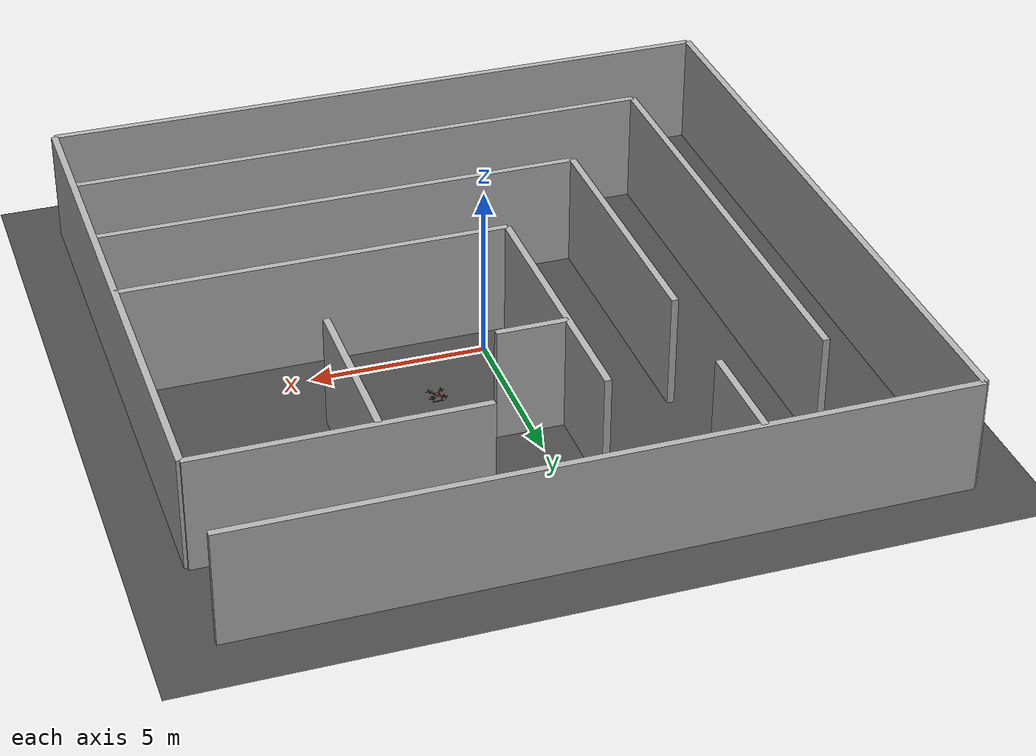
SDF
<?xml version="1.0" ?>
<sdf version="1.9">
  <world name="quad">

    <!-- 1 kHz control loop: HomeFly expects exactly one IMU frame per
         control period (FlightConfig::control_period_us = 1000). -->
    <physics name="homefly_1khz" type="ignored">
      <max_step_size>0.001</max_step_size>
      <real_time_update_rate>1000</real_time_update_rate>
      <real_time_factor>1.0</real_time_factor>
    </physics>

    <plugin filename="gz-sim-physics-system"
            name="gz::sim::systems::Physics"/>
    <!-- Harmonic 8 needs the dedicated Imu system; gz-sim-sensors-system
         only handles rendering style sensors. -->
    <plugin filename="gz-sim-imu-system"
            name="gz::sim::systems::Imu"/>
    <plugin filename="gz-sim-sensors-system"
            name="gz::sim::systems::Sensors"/>
    <plugin filename="gz-sim-user-commands-system"
            name="gz::sim::systems::UserCommands"/>
    <plugin filename="gz-sim-scene-broadcaster-system"
            name="gz::sim::systems::SceneBroadcaster"/>

    <light type="directional" name="sun">
      <cast_shadows>true</cast_shadows>
      <pose>0 0 10 0 0 0</pose>
      <diffuse>0.8 0.8 0.8 1</diffuse>
      <specular>0.2 0.2 0.2 1</specular>
      <direction>-0.5 0.1 -1</direction>
    </light>

    <model name='maze'>
      <static>1</static>
      <link name='Wall_0'>
        <pose degrees="true">-10 -10 0 0 0 90</pose>
        <collision name='Wall_0_Collision'>
          <pose>10 0 1.25 0 0 0</pose>
          <geometry>
            <box>
              <size>20 0.2 4</size>
            </box>
          </geometry>
        </collision>
        <visual name='Wall_0_Visual'>
          <pose>10 0 1.25 0 0 0</pose>
          <geometry>
            <box>
              <size>20 0.2 4</size>
            </box>
          </geometry>
          <material>
            <diffuse>0.699999988 0.699999988 0.699999988 1</diffuse>
          </material>
        </visual>
      </link>

      <link name='Wall_1'>
        <pose>-10 -10 0 0 0 0</pose>
        <collision name='Wall_1_Collision'>
          <pose>10 0 1.25 0 0 0</pose>
          <geometry>
            <box>
              <size>20 0.2 4</size>
            </box>
          </geometry>
        </collision>
        <visual name='Wall_1_Visual'>
          <pose>10 0 1.25 0 0 0</pose>
          <geometry>
            <box>
              <size>20 0.2 4</size>
            </box>
          </geometry>
          <material>
            <diffuse>0.699999988 0.699999988 0.699999988 1</diffuse>
          </material>
        </visual>
      </link>

      <link name='Wall_2'>
        <pose degrees="true">10 -10 0 0 0 90</pose>
        <collision name='Wall_2_Collision'>
          <pose>8.5 0 1.25 0 0 0</pose>
          <geometry>
            <box>
              <size>17 0.2 4</size>
            </box>
          </geometry>
        </collision>
        <visual name='Wall_2_Visual'>
          <pose>8.5 0 1.25 0 0 0</pose>
          <geometry>
            <box>
              <size>17 0.2 4</size>
            </box>
          </geometry>
          <material>
            <diffuse>0.699999988 0.699999988 0.699999988 1</diffuse>
          </material>
        </visual>
      </link>

      <link name='Wall_3'>
        <pose>-10 10 0 0 0 0</pose>
        <collision name='Wall_3_Collision'>
          <pose>10 0 1.25 0 0 0</pose>
          <geometry>
            <box>
              <size>20 0.2 4</size>
            </box>
          </geometry>
        </collision>
        <visual name='Wall_3_Visual'>
          <pose>10 0 1.25 0 0 0</pose>
          <geometry>
            <box>
              <size>20 0.2 4</size>
            </box>
          </geometry>
          <material>
            <diffuse>0.699999988 0.699999988 0.699999988 1</diffuse>
          </material>
        </visual>
      </link>

      <link name='Wall_4'>
        <pose>-7 -7 0 0 0 0</pose>
        <collision name='Wall_4_Collision'>
          <pose>8.5 0 1.25 0 0 0</pose>
          <geometry>
            <box>
              <size>17 0.2 4</size>
            </box>
          </geometry>
        </collision>
        <visual name='Wall_4_Visual'>
          <pose>8.5 0 1.25 0 0 0</pose>
          <geometry>
            <box>
              <size>17 0.2 4</size>
            </box>
          </geometry>
          <material>
            <diffuse>0.699999988 0.699999988 0.699999988 1</diffuse>
          </material>
        </visual>
      </link>

      <link name='Wall_5'>
        <pose degrees="true">-7 -7 0 0 0 90</pose>
        <collision name='Wall_5_Collision'>
          <pose>7 0 1.25 0 0 0</pose>
          <geometry>
            <box>
              <size>14 0.2 4</size>
            </box>
          </geometry>
        </collision>
        <visual name='Wall_5_Visual'>
          <pose>7 0 1.25 0 0 0</pose>
          <geometry>
            <box>
              <size>14 0.2 4</size>
            </box>
          </geometry>
          <material>
            <diffuse>0.699999988 0.699999988 0.699999988 1</diffuse>
          </material>
        </visual>
      </link>

      <link name='Wall_6'>
        <pose>-4 -4 0 0 0 0</pose>
        <collision name='Wall_6_Collision'>
          <pose>7 0 1.25 0 0 0</pose>
          <geometry>
            <box>
              <size>14 0.2 4</size>
            </box>
          </geometry>
        </collision>
        <visual name='Wall_6_Visual'>
          <pose>7 0 1.25 0 0 0</pose>
          <geometry>
            <box>
              <size>14 0.2 4</size>
            </box>
          </geometry>
          <material>
            <diffuse>0.699999988 0.699999988 0.699999988 1</diffuse>
          </material>
        </visual>
      </link>

      <link name='Wall_7'>
        <pose degrees="true">-4 -4 0 0 0 90</pose>
        <collision name='Wall_7_Collision'>
          <pose>4 0 1.25 0 0 0</pose>
          <geometry>
            <box>
              <size>8 0.2 4</size>
            </box>
          </geometry>
        </collision>
        <visual name='Wall_7_Visual'>
          <pose>4 0 1.25 0 0 0</pose>
          <geometry>
            <box>
              <size>8 0.2 4</size>
            </box>
          </geometry>
          <material>
            <diffuse>0.699999988 0.699999988 0.699999988 1</diffuse>
          </material>
        </visual>
      </link>

      <link name='Wall_8'>
        <pose>-1 -1 0 0 0 0</pose>
        <collision name='Wall_8_Collision'>
          <pose>5.5 0 1.25 0 0 0</pose>
          <geometry>
            <box>
              <size>11 0.2 4</size>
            </box>
          </geometry>
        </collision>
        <visual name='Wall_8_Visual'>
          <pose>5.5 0 1.25 0 0 0</pose>
          <geometry>
            <box>
              <size>11 0.2 4</size>
            </box>
          </geometry>
          <material>
            <diffuse>0.699999988 0.699999988 0.699999988 1</diffuse>
          </material>
        </visual>
      </link>

      <link name='Wall_9'>
        <pose degrees="true">-1 -1 0 0 0 90</pose>
        <collision name='Wall_9_Collision'>
          <pose>4 0 1.25 0 0 0</pose>
          <geometry>
            <box>
              <size>8 0.2 4</size>
            </box>
          </geometry>
        </collision>
        <visual name='Wall_9_Visual'>
          <pose>4 0 1.25 0 0 0</pose>
          <geometry>
            <box>
              <size>8 0.2 4</size>
            </box>
          </geometry>
          <material>
            <diffuse>0.699999988 0.699999988 0.699999988 1</diffuse>
          </material>
        </visual>
      </link>

      <link name='Wall_10'>
        <pose degrees="true">-4 7 0 0 0 90</pose>
        <collision name='Wall_10_Collision'>
          <pose>1.5 0 1.25 0 0 0</pose>
          <geometry>
            <box>
              <size>3 0.2 4</size>
            </box>
          </geometry>
        </collision>
        <visual name='Wall_10_Visual'>
          <pose>1.5 0 1.25 0 0 0</pose>
          <geometry>
            <box>
              <size>3 0.2 4</size>
            </box>
          </geometry>
          <material>
            <diffuse>0.699999988 0.699999988 0.699999988 1</diffuse>
          </material>
        </visual>
      </link>

      <link name='Wall_11'>
        <pose>-1 4 0 0 0 0</pose>
        <collision name='Wall_11_Collision'>
          <pose>1 0 1.25 0 0 0</pose>
          <geometry>
            <box>
              <size>2 0.2 4</size>
            </box>
          </geometry>
        </collision>
        <visual name='Wall_11_Visual'>
          <pose>1 0 1.25 0 0 0</pose>
          <geometry>
            <box>
              <size>2 0.2 4</size>
            </box>
          </geometry>
          <material>
            <diffuse>0.699999988 0.699999988 0.699999988 1</diffuse>
          </material>
        </visual>
      </link>

      <link name='Wall_12'>
        <pose>2 7 0 0 0 0</pose>
        <collision name='Wall_12_Collision'>
          <pose>4 0 1.25 0 0 0</pose>
          <geometry>
            <box>
              <size>8 0.2 4</size>
            </box>
          </geometry>
        </collision>
        <visual name='Wall_12_Visual'>
          <pose>4 0 1.25 0 0 0</pose>
          <geometry>
            <box>
              <size>8 0.2 4</size>
            </box>
          </geometry>
          <material>
            <diffuse>0.699999988 0.699999988 0.699999988 1</diffuse>
          </material>
        </visual>
      </link>

      <link name='Wall_13'>
        <pose degrees="true">5 2 0 0 0 90</pose>
        <collision name='Wall_13_Collision'>
          <pose>2.5 0 1.25 0 0 0</pose>
          <geometry>
            <box>
              <size>5 0.2 4</size>
            </box>
          </geometry>
        </collision>
        <visual name='Wall_13_Visual'>
          <pose>2.5 0 1.25 0 0 0</pose>
          <geometry>
            <box>
              <size>5 0.2 4</size>
            </box>
          </geometry>
          <material>
            <diffuse>0.699999988 0.699999988 0.699999988 1</diffuse>
          </material>
        </visual>
      </link>
    </model>

    <model name="floor">
      <static>true</static>
      <link name="link">
        <collision name="collision">
          <geometry>
            <plane>
              <normal>0 0 1</normal>
              <size>100 100</size>
            </plane>
          </geometry>
          <surface>
            <friction>
              <ode>
                <mu>100</mu>
                <mu2>50</mu2>
              </ode>
            </friction>
          </surface>
        </collision>
        <visual name="visual">
          <cast_shadows>false</cast_shadows>
          <geometry>
            <plane>
              <normal>0 0 1</normal>
              <size>100 100</size>
            </plane>
          </geometry>
          <material>
            <diffuse>0.3 0.3 0.3 1</diffuse>
          </material>
        </visual>
      </link>
    </model>

    <model name="homefly" canonical_link="body">
      <pose>2 2 0.2 0 0 0</pose>

      <link name="body">
        <inertial>
          <mass>0.8</mass>
          <inertia>
            <ixx>0.005</ixx><iyy>0.005</iyy><izz>0.009</izz>
            <ixy>0</ixy><ixz>0</ixz><iyz>0</iyz>
          </inertia>
        </inertial>
        <visual name="iris_pod">
          <geometry><box><size>0.16 0.12 0.045</size></box></geometry>
          <material><diffuse>0.11 0.12 0.14 1</diffuse></material>
        </visual>
        <visual name="iris_canopy">
          <pose>0 0 0.028 0 0 0</pose>
          <geometry><box><size>0.10 0.09 0.012</size></box></geometry>
          <material><diffuse>0.82 0.16 0.12 1</diffuse></material>
        </visual>
        <visual name="iris_arm_0">
          <pose degrees="true">0.085 0.085 0 0 0 45</pose>
          <geometry><box><size>0.24 0.018 0.012</size></box></geometry>
          <material><diffuse>0.16 0.17 0.19 1</diffuse></material>
        </visual>
        <visual name="iris_arm_1">
          <pose degrees="true">0.085 -0.085 0 0 0 -45</pose>
          <geometry><box><size>0.24 0.018 0.012</size></box></geometry>
          <material><diffuse>0.16 0.17 0.19 1</diffuse></material>
        </visual>
        <visual name="iris_arm_2">
          <pose degrees="true">-0.085 -0.085 0 0 0 45</pose>
          <geometry><box><size>0.24 0.018 0.012</size></box></geometry>
          <material><diffuse>0.16 0.17 0.19 1</diffuse></material>
        </visual>
        <visual name="iris_arm_3">
          <pose degrees="true">-0.085 0.085 0 0 0 -45</pose>
          <geometry><box><size>0.24 0.018 0.012</size></box></geometry>
          <material><diffuse>0.16 0.17 0.19 1</diffuse></material>
        </visual>
        <visual name="iris_motor_0">
          <pose>0.17 0.17 0.012 0 0 0</pose>
          <geometry><cylinder><radius>0.022</radius><length>0.028</length></cylinder></geometry>
          <material><diffuse>0.30 0.31 0.33 1</diffuse></material>
        </visual>
        <visual name="iris_motor_1">
          <pose>0.17 -0.17 0.012 0 0 0</pose>
          <geometry><cylinder><radius>0.022</radius><length>0.028</length></cylinder></geometry>
          <material><diffuse>0.30 0.31 0.33 1</diffuse></material>
        </visual>
        <visual name="iris_motor_2">
          <pose>-0.17 -0.17 0.012 0 0 0</pose>
          <geometry><cylinder><radius>0.022</radius><length>0.028</length></cylinder></geometry>
          <material><diffuse>0.30 0.31 0.33 1</diffuse></material>
        </visual>
        <visual name="iris_motor_3">
          <pose>-0.17 0.17 0.012 0 0 0</pose>
          <geometry><cylinder><radius>0.022</radius><length>0.028</length></cylinder></geometry>
          <material><diffuse>0.30 0.31 0.33 1</diffuse></material>
        </visual>
        <visual name="iris_skid_l">
          <pose>0 0.13 -0.13 0 0 0</pose>
          <geometry><box><size>0.30 0.014 0.014</size></box></geometry>
          <material><diffuse>0.20 0.21 0.23 1</diffuse></material>
        </visual>
        <visual name="iris_skid_r">
          <pose>0 -0.13 -0.13 0 0 0</pose>
          <geometry><box><size>0.30 0.014 0.014</size></box></geometry>
          <material><diffuse>0.20 0.21 0.23 1</diffuse></material>
        </visual>
        <visual name="iris_strut_0">
          <pose>0.1 0.13 -0.07 0 0 0</pose>
          <geometry><cylinder><radius>0.006</radius><length>0.12</length></cylinder></geometry>
          <material><diffuse>0.20 0.21 0.23 1</diffuse></material>
        </visual>
        <visual name="iris_strut_1">
          <pose>0.1 -0.13 -0.07 0 0 0</pose>
          <geometry><cylinder><radius>0.006</radius><length>0.12</length></cylinder></geometry>
          <material><diffuse>0.20 0.21 0.23 1</diffuse></material>
        </visual>
        <visual name="iris_strut_2">
          <pose>-0.1 0.13 -0.07 0 0 0</pose>
          <geometry><cylinder><radius>0.006</radius><length>0.12</length></cylinder></geometry>
          <material><diffuse>0.20 0.21 0.23 1</diffuse></material>
        </visual>
        <visual name="iris_strut_3">
          <pose>-0.1 -0.13 -0.07 0 0 0</pose>
          <geometry><cylinder><radius>0.006</radius><length>0.12</length></cylinder></geometry>
          <material><diffuse>0.20 0.21 0.23 1</diffuse></material>
        </visual>
        <collision name="body_collision">
          <geometry><box><size>0.20 0.20 0.05</size></box></geometry>
        </collision>

        <!-- Only angular_velocity + linear_acceleration are consumed by the
             HomeFly complementary filter; no quaternion is needed. -->
        <sensor name="imu" type="imu">
          <topic>/world/quad/model/homefly/link/body/sensor/imu/imu</topic>
          <always_on>1</always_on>
          <update_rate>1000</update_rate>
          <imu>
            <angular_velocity>
              <x><noise type="gaussian"><mean>0</mean><stddev>0</stddev></noise></x>
              <y><noise type="gaussian"><mean>0</mean><stddev>0</stddev></noise></y>
              <z><noise type="gaussian"><mean>0</mean><stddev>0</stddev></noise></z>
            </angular_velocity>
            <linear_acceleration>
              <x><noise type="gaussian"><mean>0</mean><stddev>0</stddev></noise></x>
              <y><noise type="gaussian"><mean>0</mean><stddev>0</stddev></noise></y>
              <z><noise type="gaussian"><mean>0</mean><stddev>0</stddev></noise></z>
            </linear_acceleration>
          </imu>
        </sensor>
      </link>

      <!-- Quad-X rotor layout. motorNumber matches MotorMixer's Quad-X order;
           the bridge writes Actuators.velocity[motorNumber] in rad/s. -->
      <link name="rotor_0">
        <pose>0.17 0.17 0.02 0 0 0</pose>
        <inertial><mass>0.005</mass><inertia><ixx>1e-6</ixx><iyy>1e-6</iyy><izz>2e-6</izz><ixy>0</ixy><ixz>0</ixz><iyz>0</iyz></inertia></inertial>
        <visual name="visual">
          <geometry><cylinder><radius>0.012</radius><length>0.008</length></cylinder></geometry>
          <material><diffuse>0.30 0.31 0.33 1</diffuse></material>
        </visual>
        <visual name="prop_blade_a">
          <geometry><box><size>0.20 0.024 0.003</size></box></geometry>
          <material><diffuse>0.17 0.18 0.20 1</diffuse></material>
        </visual>
        <visual name="prop_blade_b">
          <pose degrees="true">0 0 0 0 0 90</pose>
          <geometry><box><size>0.20 0.024 0.003</size></box></geometry>
          <material><diffuse>0.17 0.18 0.20 1</diffuse></material>
        </visual>
        <visual name="prop_mark">
          <pose>0.075 0 0.003 0 0 0</pose>
          <geometry><box><size>0.04 0.024 0.002</size></box></geometry>
          <material><diffuse>0.82 0.16 0.12 1</diffuse></material>
        </visual>
      </link>
      <joint name="rotor_0_joint" type="revolute">
        <parent>body</parent><child>rotor_0</child>
        <axis><xyz>0 0 1</xyz><limit><lower>-1e16</lower><upper>1e16</upper></limit></axis>
      </joint>

      <link name="rotor_1">
        <pose>0.17 -0.17 0.02 0 0 0</pose>
        <inertial><mass>0.005</mass><inertia><ixx>1e-6</ixx><iyy>1e-6</iyy><izz>2e-6</izz><ixy>0</ixy><ixz>0</ixz><iyz>0</iyz></inertia></inertial>
        <visual name="visual">
          <geometry><cylinder><radius>0.012</radius><length>0.008</length></cylinder></geometry>
          <material><diffuse>0.30 0.31 0.33 1</diffuse></material>
        </visual>
        <visual name="prop_blade_a">
          <geometry><box><size>0.20 0.024 0.003</size></box></geometry>
          <material><diffuse>0.17 0.18 0.20 1</diffuse></material>
        </visual>
        <visual name="prop_blade_b">
          <pose degrees="true">0 0 0 0 0 90</pose>
          <geometry><box><size>0.20 0.024 0.003</size></box></geometry>
          <material><diffuse>0.17 0.18 0.20 1</diffuse></material>
        </visual>
        <visual name="prop_mark">
          <pose>0.075 0 0.003 0 0 0</pose>
          <geometry><box><size>0.04 0.024 0.002</size></box></geometry>
          <material><diffuse>0.90 0.90 0.92 1</diffuse></material>
        </visual>
      </link>
      <joint name="rotor_1_joint" type="revolute">
        <parent>body</parent><child>rotor_1</child>
        <axis><xyz>0 0 1</xyz><limit><lower>-1e16</lower><upper>1e16</upper></limit></axis>
      </joint>

      <link name="rotor_2">
        <pose>-0.17 -0.17 0.02 0 0 0</pose>
        <inertial><mass>0.005</mass><inertia><ixx>1e-6</ixx><iyy>1e-6</iyy><izz>2e-6</izz><ixy>0</ixy><ixz>0</ixz><iyz>0</iyz></inertia></inertial>
        <visual name="visual">
          <geometry><cylinder><radius>0.012</radius><length>0.008</length></cylinder></geometry>
          <material><diffuse>0.30 0.31 0.33 1</diffuse></material>
        </visual>
        <visual name="prop_blade_a">
          <geometry><box><size>0.20 0.024 0.003</size></box></geometry>
          <material><diffuse>0.17 0.18 0.20 1</diffuse></material>
        </visual>
        <visual name="prop_blade_b">
          <pose degrees="true">0 0 0 0 0 90</pose>
          <geometry><box><size>0.20 0.024 0.003</size></box></geometry>
          <material><diffuse>0.17 0.18 0.20 1</diffuse></material>
        </visual>
        <visual name="prop_mark">
          <pose>0.075 0 0.003 0 0 0</pose>
          <geometry><box><size>0.04 0.024 0.002</size></box></geometry>
          <material><diffuse>0.90 0.90 0.92 1</diffuse></material>
        </visual>
      </link>
      <joint name="rotor_2_joint" type="revolute">
        <parent>body</parent><child>rotor_2</child>
        <axis><xyz>0 0 1</xyz><limit><lower>-1e16</lower><upper>1e16</upper></limit></axis>
      </joint>

      <link name="rotor_3">
        <pose>-0.17 0.17 0.02 0 0 0</pose>
        <inertial><mass>0.005</mass><inertia><ixx>1e-6</ixx><iyy>1e-6</iyy><izz>2e-6</izz><ixy>0</ixy><ixz>0</ixz><iyz>0</iyz></inertia></inertial>
        <visual name="visual">
          <geometry><cylinder><radius>0.012</radius><length>0.008</length></cylinder></geometry>
          <material><diffuse>0.30 0.31 0.33 1</diffuse></material>
        </visual>
        <visual name="prop_blade_a">
          <geometry><box><size>0.20 0.024 0.003</size></box></geometry>
          <material><diffuse>0.17 0.18 0.20 1</diffuse></material>
        </visual>
        <visual name="prop_blade_b">
          <pose degrees="true">0 0 0 0 0 90</pose>
          <geometry><box><size>0.20 0.024 0.003</size></box></geometry>
          <material><diffuse>0.17 0.18 0.20 1</diffuse></material>
        </visual>
        <visual name="prop_mark">
          <pose>0.075 0 0.003 0 0 0</pose>
          <geometry><box><size>0.04 0.024 0.002</size></box></geometry>
          <material><diffuse>0.82 0.16 0.12 1</diffuse></material>
        </visual>
      </link>
      <joint name="rotor_3_joint" type="revolute">
        <parent>body</parent><child>rotor_3</child>
        <axis><xyz>0 0 1</xyz><limit><lower>-1e16</lower><upper>1e16</upper></limit></axis>
      </joint>

      <plugin filename="gz-sim-multicopter-motor-model-system"
              name="gz::sim::systems::MulticopterMotorModel">
        <jointName>rotor_0_joint</jointName><linkName>rotor_0</linkName>
        <turningDirection>ccw</turningDirection>
        <timeConstantUp>0.0125</timeConstantUp><timeConstantDown>0.025</timeConstantDown>
        <maxRotVelocity>1000</maxRotVelocity><motorConstant>8.54858e-06</motorConstant>
        <momentConstant>0.016</momentConstant><commandSubTopic>actuators</commandSubTopic>
        <motorNumber>0</motorNumber><rotorDragCoefficient>8.06428e-05</rotorDragCoefficient>
        <rollingMomentCoefficient>1e-06</rollingMomentCoefficient>
        <rotorVelocitySlowdownSim>10</rotorVelocitySlowdownSim><motorType>velocity</motorType>
      </plugin>
      <plugin filename="gz-sim-multicopter-motor-model-system"
              name="gz::sim::systems::MulticopterMotorModel">
        <jointName>rotor_1_joint</jointName><linkName>rotor_1</linkName>
        <turningDirection>cw</turningDirection>
        <timeConstantUp>0.0125</timeConstantUp><timeConstantDown>0.025</timeConstantDown>
        <maxRotVelocity>1000</maxRotVelocity><motorConstant>8.54858e-06</motorConstant>
        <momentConstant>0.016</momentConstant><commandSubTopic>actuators</commandSubTopic>
        <motorNumber>1</motorNumber><rotorDragCoefficient>8.06428e-05</rotorDragCoefficient>
        <rollingMomentCoefficient>1e-06</rollingMomentCoefficient>
        <rotorVelocitySlowdownSim>10</rotorVelocitySlowdownSim><motorType>velocity</motorType>
      </plugin>
      <plugin filename="gz-sim-multicopter-motor-model-system"
              name="gz::sim::systems::MulticopterMotorModel">
        <jointName>rotor_2_joint</jointName><linkName>rotor_2</linkName>
        <turningDirection>cw</turningDirection>
        <timeConstantUp>0.0125</timeConstantUp><timeConstantDown>0.025</timeConstantDown>
        <maxRotVelocity>1000</maxRotVelocity><motorConstant>8.54858e-06</motorConstant>
        <momentConstant>0.016</momentConstant><commandSubTopic>actuators</commandSubTopic>
        <motorNumber>2</motorNumber><rotorDragCoefficient>8.06428e-05</rotorDragCoefficient>
        <rollingMomentCoefficient>1e-06</rollingMomentCoefficient>
        <rotorVelocitySlowdownSim>10</rotorVelocitySlowdownSim><motorType>velocity</motorType>
      </plugin>
      <plugin filename="gz-sim-multicopter-motor-model-system"
              name="gz::sim::systems::MulticopterMotorModel">
        <jointName>rotor_3_joint</jointName><linkName>rotor_3</linkName>
        <turningDirection>ccw</turningDirection>
        <timeConstantUp>0.0125</timeConstantUp><timeConstantDown>0.025</timeConstantDown>
        <maxRotVelocity>1000</maxRotVelocity><motorConstant>8.54858e-06</motorConstant>
        <momentConstant>0.016</momentConstant><commandSubTopic>actuators</commandSubTopic>
        <motorNumber>3</motorNumber><rotorDragCoefficient>8.06428e-05</rotorDragCoefficient>
        <rollingMomentCoefficient>1e-06</rollingMomentCoefficient>
        <rotorVelocitySlowdownSim>10</rotorVelocitySlowdownSim><motorType>velocity</motorType>
      </plugin>
    </model>
  </world>
</sdf>
